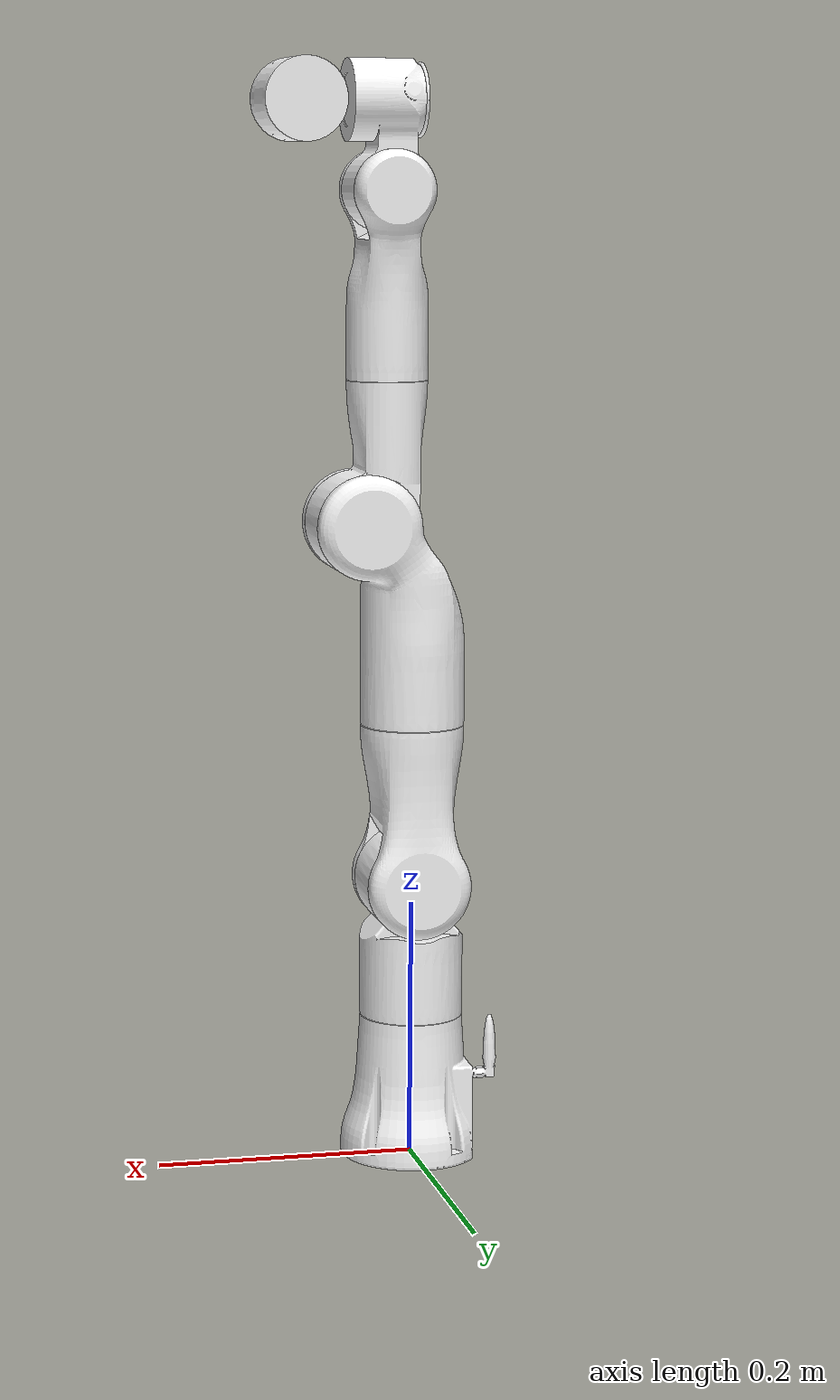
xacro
<?xml version="1.0"?>
<robot xmlns:xacro="http://www.ros.org/wiki/xacro" name="panda">
    <xacro:arg name="initial_positions_file" default="initial_positions.yaml" />

    <!-- Import panda urdf file -->
    <xacro:include filename="$(find rm_description)/urdf/rm_gen72.urdf" />

    <!-- Import panda ros2_control description -->
    <xacro:include filename="rm_gen72_description.ros2_control.xacro" />

    <xacro:rm_gen72_description_ros2_control name="FakeSystem" initial_positions_file="$(arg initial_positions_file)"/>
</robot>

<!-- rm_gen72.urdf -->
<robot
  name="rm_gen72_description">
  <link
    name="base_link">
    <inertial>
      <origin
        xyz="0.000608631599864255 0.000101410841221341 0.0500536423028978"
        rpy="0 0 0" />
      <mass
        value="0.725732279372221" />
      <inertia
        ixx="0.00116526259312757"
        ixy="3.86984764040053E-06"
        ixz="3.61598634195252E-05"
        iyy="0.00114387939249157"
        iyz="-1.69159565748577E-06"
        izz="0.000799620765266164" />
    </inertial>
    <visual>
      <origin
        xyz="0 0 0"
        rpy="0 0 0" />
      <geometry>
        <mesh
          filename="package://rm_description/meshes/rm_gen72_arm/base_link.STL" />
      </geometry>
      <material
        name="">
        <color
          rgba="1 1 1 1" />
      </material>
    </visual>
    <collision>
      <origin
        xyz="0 0 0"
        rpy="0 0 0" />
      <geometry>
        <mesh
          filename="package://rm_description/meshes/rm_gen72_arm/base_link.STL" />
      </geometry>
    </collision>
  </link>
  <link
    name="Link1">
    <inertial>
      <origin
        xyz="3.54241616239891E-07 -6.04073277655109E-05 -0.0474562076947793"
        rpy="0 0 0" />
      <mass
        value="0.511231576042974" />
      <inertia
        ixx="0.000959440501675413"
        ixy="-1.90967914521654E-09"
        ixz="-7.95751539476966E-09"
        iyy="0.00102039305288465"
        iyz="1.46570590325123E-06"
        izz="0.000388714616194907" />
    </inertial>
    <visual>
      <origin
        xyz="0 0 0"
        rpy="0 0 0" />
      <geometry>
        <mesh
          filename="package://rm_description/meshes/rm_gen72_arm/Link1.STL" />
      </geometry>
      <material
        name="">
        <color
          rgba="1 1 1 1" />
      </material>
    </visual>
    <collision>
      <origin
        xyz="0 0 0"
        rpy="0 0 0" />
      <geometry>
        <mesh
          filename="package://rm_description/meshes/rm_gen72_arm/Link1.STL" />
      </geometry>
    </collision>
  </link>
  <joint
    name="joint1"
    type="revolute">
    <origin
      xyz="0 0 0.218"
      rpy="0 0 0" />
    <parent
      link="base_link" />
    <child
      link="Link1" />
    <axis
      xyz="0 0 1" />
    <limit
      lower="-3.0014"
      upper="3.0014"
      effort="25"
      velocity="3.141" />
  </joint>
  <link
    name="Link2">
    <inertial>
      <origin
        xyz="-7.13241796657627E-07 -0.0576246216952895 -3.88440270542586E-05"
        rpy="0 0 0" />
      <mass
        value="0.551907023014854" />
      <inertia
        ixx="0.00142140348660694"
        ixy="-1.11761928109077E-08"
        ixz="1.36372804172861E-08"
        iyy="0.000525714272398651"
        iyz="1.30499471806307E-06"
        izz="0.00127234961251408" />
    </inertial>
    <visual>
      <origin
        xyz="0 0 0"
        rpy="0 0 0" />
      <geometry>
        <mesh
          filename="package://rm_description/meshes/rm_gen72_arm/Link2.STL" />
      </geometry>
      <material
        name="">
        <color
          rgba="1 1 1 1" />
      </material>
    </visual>
    <collision>
      <origin
        xyz="0 0 0"
        rpy="0 0 0" />
      <geometry>
        <mesh
          filename="package://rm_description/meshes/rm_gen72_arm/Link2.STL" />
      </geometry>
    </collision>
  </link>
  <joint
    name="joint2"
    type="revolute">
    <origin
      xyz="0 0 0"
      rpy="-1.5708 0 0" />
    <parent
      link="Link1" />
    <child
      link="Link2" />
    <axis
      xyz="0 0 1" />
    <limit
      lower="-1.8323"
      upper="1.8323"
      effort="25"
      velocity="3.141" />
  </joint>
  <link
    name="Link3">
    <inertial>
      <origin
        xyz="0.00897441376214199 2.62633968732563E-05 -0.0738284702130494"
        rpy="0 0 0" />
      <mass
        value="0.774130450031732" />
      <inertia
        ixx="0.00242102073961797"
        ixy="-6.22596416744622E-07"
        ixz="-0.000489521447339777"
        iyy="0.00248694314969316"
        iyz="-1.4854289556066E-06"
        izz="0.00090099718971981" />
    </inertial>
    <visual>
      <origin
        xyz="0 0 0"
        rpy="0 0 0" />
      <geometry>
        <mesh
          filename="package://rm_description/meshes/rm_gen72_arm/Link3.STL" />
      </geometry>
      <material
        name="">
        <color
          rgba="1 1 1 1" />
      </material>
    </visual>
    <collision>
      <origin
        xyz="0 0 0"
        rpy="0 0 0" />
      <geometry>
        <mesh
          filename="package://rm_description/meshes/rm_gen72_arm/Link3.STL" />
      </geometry>
    </collision>
  </link>
  <joint
    name="joint3"
    type="revolute">
    <origin
      xyz="0 -0.28 0"
      rpy="1.5708 0 0" />
    <parent
      link="Link2" />
    <child
      link="Link3" />
    <axis
      xyz="0 0 1" />
    <limit
      lower="-3.0014"
      upper="3.0014"
      effort="25"
      velocity="3.141" />
  </joint>
  <link
    name="Link4">
    <inertial>
      <origin
        xyz="-0.0096243903445302 0.0352034287339325 0.000174576348464232"
        rpy="0 0 0" />
      <mass
        value="0.437130215853835" />
      <inertia
        ixx="0.000866914153248166"
        ixy="0.000148761646913658"
        ixz="-7.42553547350131E-07"
        iyy="0.000267753002587664"
        iyz="2.6805826548563E-06"
        izz="0.000952324298928138" />
    </inertial>
    <visual>
      <origin
        xyz="0 0 0"
        rpy="0 0 0" />
      <geometry>
        <mesh
          filename="package://rm_description/meshes/rm_gen72_arm/Link4.STL" />
      </geometry>
      <material
        name="">
        <color
          rgba="1 1 1 1" />
      </material>
    </visual>
    <collision>
      <origin
        xyz="0 0 0"
        rpy="0 0 0" />
      <geometry>
        <mesh
          filename="package://rm_description/meshes/rm_gen72_arm/Link4.STL" />
      </geometry>
    </collision>
  </link>
  <joint
    name="joint4"
    type="revolute">
    <origin
      xyz="0.04 0 0"
      rpy="1.5708 0 0" />
    <parent
      link="Link3" />
    <child
      link="Link4" />
    <axis
      xyz="0 0 1" />
    <limit
      lower="-2.8792"
      upper="0.9597"
      effort="25"
      velocity="3.141" />
  </joint>
  <link
    name="Link5">
    <inertial>
      <origin
        xyz="-4.79650184286029E-07 -3.84737693792612E-05 -0.0669554878200541"
        rpy="0 0 0" />
      <mass
        value="0.424276753764529" />
      <inertia
        ixx="0.0011244489011316"
        ixy="7.56623220194193E-09"
        ixz="-1.71276249932631E-08"
        iyy="0.00103382374928123"
        iyz="8.2469441747875E-07"
        izz="0.000274640088277484" />
    </inertial>
    <visual>
      <origin
        xyz="0 0 0"
        rpy="0 0 0" />
      <geometry>
        <mesh
          filename="package://rm_description/meshes/rm_gen72_arm/Link5.STL" />
      </geometry>
      <material
        name="">
        <color
          rgba="1 1 1 1" />
      </material>
    </visual>
    <collision>
      <origin
        xyz="0 0 0"
        rpy="0 0 0" />
      <geometry>
        <mesh
          filename="package://rm_description/meshes/rm_gen72_arm/Link5.STL" />
      </geometry>
    </collision>
  </link>
  <joint
    name="joint5"
    type="revolute">
    <origin
      xyz="-0.019 0.2525 0"
      rpy="-1.5708 0 0" />
    <parent
      link="Link4" />
    <child
      link="Link5" />
    <axis
      xyz="0 0 1" />
    <limit
      lower="-3.0014"
      upper="3.0014"
      effort="5"
      velocity="3.141" />
  </joint>
  <link
    name="Link6">
    <inertial>
      <origin
        xyz="0.00184221691932426 0.0379763265035087 -9.21090904324274E-05"
        rpy="0 0 0" />
      <mass
        value="0.302793039332829" />
      <inertia
        ixx="0.00014011480503376"
        ixy="-3.00204828273403E-06"
        ixz="-4.58155498967514E-10"
        iyy="0.000132631402640971"
        iyz="7.01344540252765E-10"
        izz="0.000155721320872423" />
    </inertial>
    <visual>
      <origin
        xyz="0 0 0"
        rpy="0 0 0" />
      <geometry>
        <mesh
          filename="package://rm_description/meshes/rm_gen72_arm/Link6.STL" />
      </geometry>
      <material
        name="">
        <color
          rgba="1 1 1 1" />
      </material>
    </visual>
    <collision>
      <origin
        xyz="0 0 0"
        rpy="0 0 0" />
      <geometry>
        <mesh
          filename="package://rm_description/meshes/rm_gen72_arm/Link6.STL" />
      </geometry>
    </collision>
  </link>
  <joint
    name="joint6"
    type="revolute">
    <origin
      xyz="0 0 0"
      rpy="1.5708 0 0" />
    <parent
      link="Link5" />
    <child
      link="Link6" />
    <axis
      xyz="0 0 1" />
    <limit
      lower="-1.707"
      upper="1.783"
      effort="5"
      velocity="3.141" />
  </joint>
  <link
    name="Link7">
    <inertial>
      <origin
        xyz="0.000199885014846801 0.0211000079719058 -4.90848725240361E-08"
        rpy="0 0 0" />
      <mass
        value="0.127401822079286" />
      <inertia
        ixx="4.95156474993269E-05"
        ixy="3.10143792228514E-12"
        ixz="2.55814128583062E-10"
        iyy="6.12184422048225E-05"
        iyz="-1.37181281244006E-11"
        izz="4.95166727643872E-05" />
    </inertial>
    <visual>
      <origin
        xyz="0 0 0"
        rpy="0 0 0" />
      <geometry>
        <mesh
          filename="package://rm_description/meshes/rm_gen72_arm/Link7.STL" />
      </geometry>
      <material
        name="">
        <color
          rgba="1 1 1 1" />
      </material>
    </visual>
    <collision>
      <origin
        xyz="0 0 0"
        rpy="0 0 0" />
      <geometry>
        <mesh
          filename="package://rm_description/meshes/rm_gen72_arm/Link7.STL" />
      </geometry>
    </collision>
  </link>
  <joint
    name="joint7"
    type="revolute">
    <origin
      xyz="0.0742 0.067 0"
      rpy="0 0 1.5708" />
    <parent
      link="Link6" />
    <child
      link="Link7" />
    <axis
      xyz="0 1 0" />
    <limit
      lower="-3.0014"
      upper="3.0014"
      effort="5"
      velocity="3.141" />
  </joint>
</robot>
